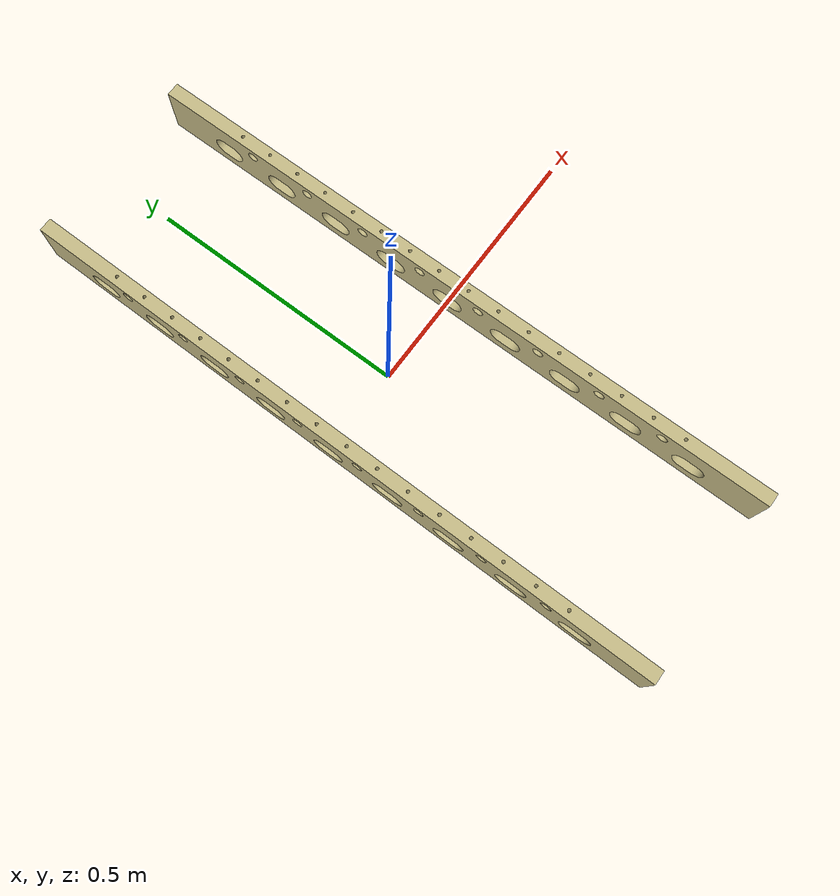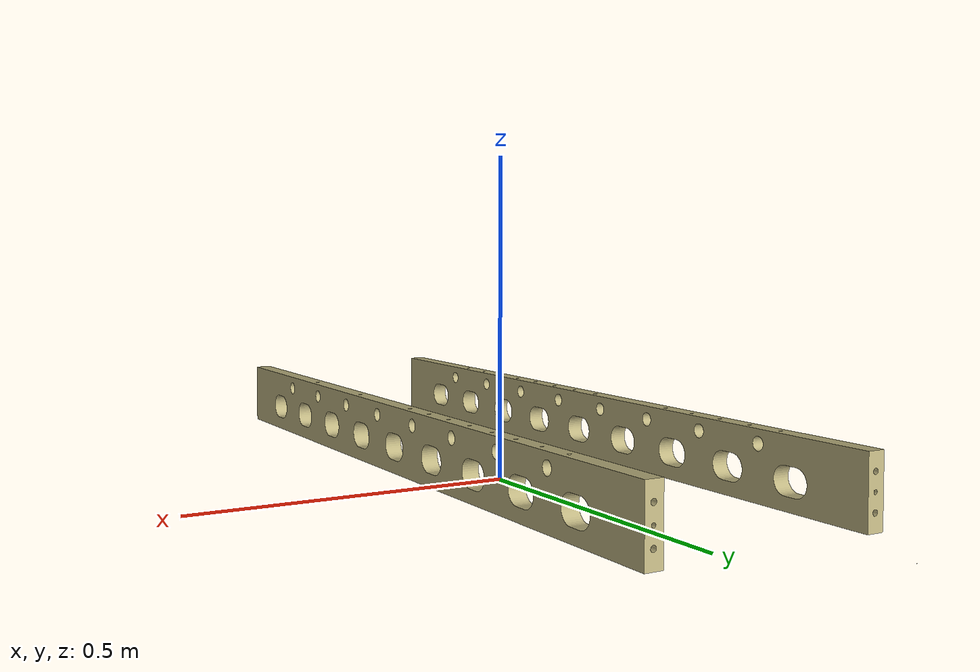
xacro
<?xml version="1.0"?>
<robot xmlns:xacro="http://www.ros.org/wiki/xacro" name="IC2D">

    <!-- Definitons -->
    <xacro:property name="slider_upper" value="10.0" />
    <xacro:property name="slider_lower" value="-10.0" />
    <xacro:property name="slider_effort_lim" value="10000" />
    <xacro:property name="slider_damping" value="0.00" />

    <xacro:property name="pol" value="0.0254" />
    <xacro:property name="lateral_offset" value="${(0.355-pol)/2}" />

    <!-- Useful Macros -->

    <xacro:macro name="include_geometry_file" params="filename">
        <geometry>
            <mesh filename="file://$(find ic2d_urdf)/meshes/${filename}.STL" scale="0.001 0.001 0.001"/>
        </geometry>
    </xacro:macro>

    <xacro:macro name="inertial_box" params="mass dx dy dz *origin">
        <inertial>
            <xacro:insert_block name="origin"/>
            <mass value="${mass}" />
            <inertia ixx="${(1/12) * mass * (dy*dy+dz*dz)}" ixy="0.0" ixz="0.0"
                     iyy="${(1/12) * mass * (dx*dx+dz*dz)}" iyz="0.0"
                     izz="${(1/12) * mass * (dx*dx+dy*dy)}" />
        </inertial>
    </xacro:macro>

    <!-- Specify some colours -->
    <!-- Rviz color -->
    <material name="nickel">
        <color rgba="${193/255} ${183/255} ${131/255} 1"/>
    </material>
    <!-- Gazebo color -->
    <gazebo reference="base_link">
        <material>
            Gazebo/Gold
        </material>
    </gazebo>

    <!-- This first link called "world" is empty -->

    <link name="world"></link>

    <joint name="slider_joint" type="prismatic">
        <origin xyz="0 0 0" rpy="0 0 0"/>
        <parent link="world"/>
        <child link="base_link"/>
        <axis xyz="1 0 0"/>
        <!-- calibration: the reference positions of the joint,
        used to calibrate the absolute position of the joint. -->
        <!-- calibration rising="0.0" /-->
        <!-- dynamics: an element specifying physical properties of the joint.
        These values are used to specify modeling properties of the joint,
        particularly useful for simulation.-->
        <dynamics damping="${slider_damping}" friction="0.0" />
        <limit lower="${slider_lower}" upper="${slider_upper}" velocity="340" effort="${slider_effort_lim}"/>
    </joint>

    <!-- Gazebo Joint Dynamics -->
    <gazebo reference="slider_joint">
        <implicitSpringDamper>true</implicitSpringDamper>
        <stopCfm>0.00010</stopCfm>
        <stopErp>0.1</stopErp> <!-- 0.2 is the default-->
        <springStiffness>0</springStiffness>
        <springReference>0</springReference>
    </gazebo>

    <link name="base_link">
        <xacro:property name="base_global_mass" value="90.27" />
        <xacro:property name="base_global_length" value="1.305" />
        <xacro:property name="base_global_height" value="0.0254" />
        <xacro:property name="base_global_width" value="0.355" />
        <xacro:property name="base_ground_offset" value="0.00" />

        <xacro:property name="link_origin">
            <origin xyz="0 0 ${base_global_height/2 + base_ground_offset}" rpy="${pi/2} 0 0" />
        </xacro:property>

        <visual>
            <origin xyz="${-base_global_width/2} ${base_global_length/2} ${base_ground_offset}" rpy="${pi/2} 0 0" />
            <xacro:include_geometry_file filename="base_global"/>
            <material name="nickel" /> <!-- for Rviz   -->
        </visual>

        <collision>
            <xacro:insert_block name="link_origin" />
            <geometry>
                <box size="${base_global_width*0.90} ${base_global_height*0.90} ${base_global_length*0.90}" />
            </geometry>
        </collision>

        <xacro:inertial_box mass="${base_global_mass}" dx="${base_global_width}"
                            dy="${base_global_height}" dz="${base_global_length}">
            <xacro:insert_block name="link_origin" />
        </xacro:inertial_box>

    </link>

    <joint name="left_lateral_joint" type="fixed">
        <parent link="base_link"/>
        <child link="left_lateral_link"/>
    </joint>

    <link name="left_lateral_link">
        <xacro:property name="link_origin">
            <origin xyz="${-lateral_offset} 0 ${pol*2.5}" rpy="0 0 0"/>
        </xacro:property>

        <visual>
            <origin xyz="${-lateral_offset-pol*0.5} ${1.200/2} ${pol}" rpy="${pi/2} 0 0"/>
            <xacro:include_geometry_file filename="lateral_semunha"/>
            <material name="nickel" />
        </visual>

        <collision>
            <xacro:insert_block name="link_origin"/>
            <geometry>
                <box size="${pol} ${1.200} ${pol*3}" />
            </geometry>
        </collision>

        <xacro:inertial_box mass="1.0" dx="${pol}" dy="${1.200}" dz="${pol*3}">
            <xacro:insert_block name="link_origin"/>
        </xacro:inertial_box>
    </link>

    <joint name="right_lateral_joint" type="fixed">
        <parent link="base_link"/>
        <child link="right_lateral_link"/>
    </joint>

    <link name="right_lateral_link">
        <xacro:property name="link_origin">
            <origin xyz="${lateral_offset} 0 ${pol*2.5}" rpy="0 0 0"/>
        </xacro:property>

        <visual>
            <origin xyz="${lateral_offset-pol*0.5} ${1.200/2} ${pol}" rpy="${pi/2} 0 0"/>
            <xacro:include_geometry_file filename="lateral_semunha"/>
            <material name="nickel" />
        </visual>

        <collision>
            <xacro:insert_block name="link_origin"/>
            <geometry>
                <box size="${pol} ${1.200} ${pol*3}" />
            </geometry>
        </collision>

        <xacro:inertial_box mass="1.0" dx="${pol}" dy="${1.200}" dz="${pol*3}">
            <xacro:insert_block name="link_origin"/>
        </xacro:inertial_box>
    </link>

    <!-- Necessary config/tags for ros2_control interface with Gazebo Classic -->
    <ros2_control name="GazeboSystem" type="system">
        <hardware>
            <plugin>gazebo_ros2_control/GazeboSystem</plugin>
        </hardware>

        <joint name="slider_joint">
            <command_interface name="position">
                <param name="min">{slider_lower}</param>
                <param name="max">{slider_upper}</param>
            </command_interface>

            <state_interface name="position">
                <param name="initial_value">0.0</param>
            </state_interface>

            <state_interface name="velocity">
                <param name="initial_value">0.0</param>
            </state_interface>

            <state_interface name="effort">
                <param name="initial_value">0.0</param>
            </state_interface>
        </joint>
    </ros2_control>

    <gazebo>
        <plugin filename="libgazebo_ros2_control.so" name="gazebo_ros2_control">
            <robot_param_node>robot_state_publisher</robot_param_node>
            <robot_param>robot_description</robot_param>
            <parameters>$(find ic2d_urdf)/config/ic2d_controllers.yaml</parameters>
        </plugin>
    </gazebo>

</robot>
